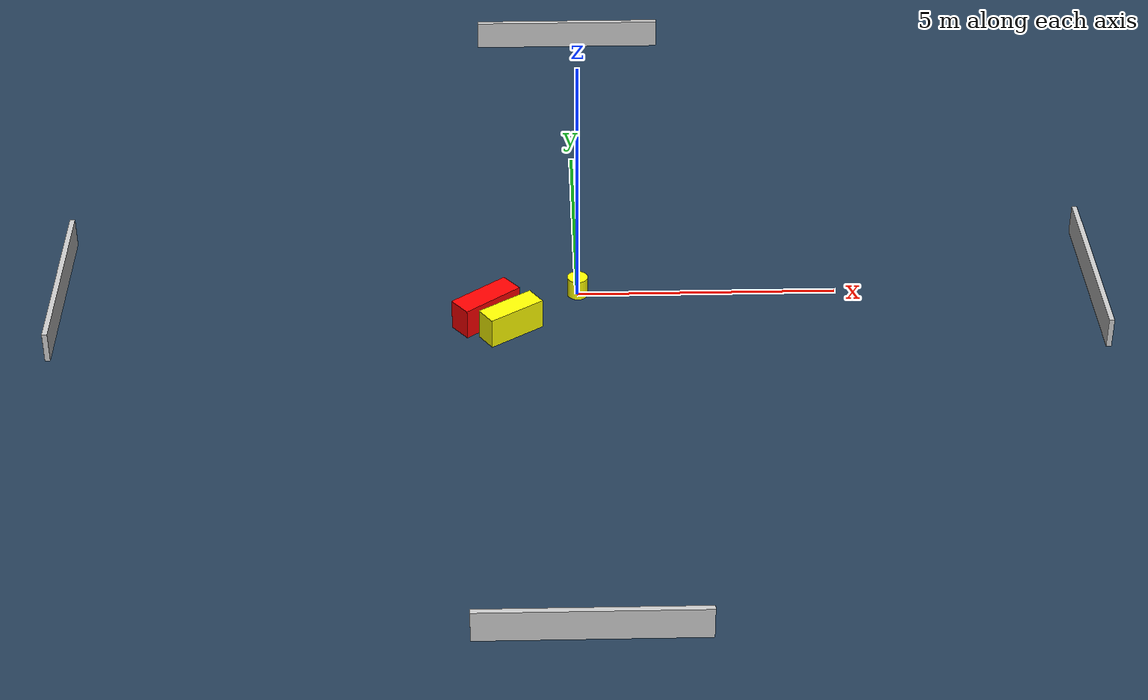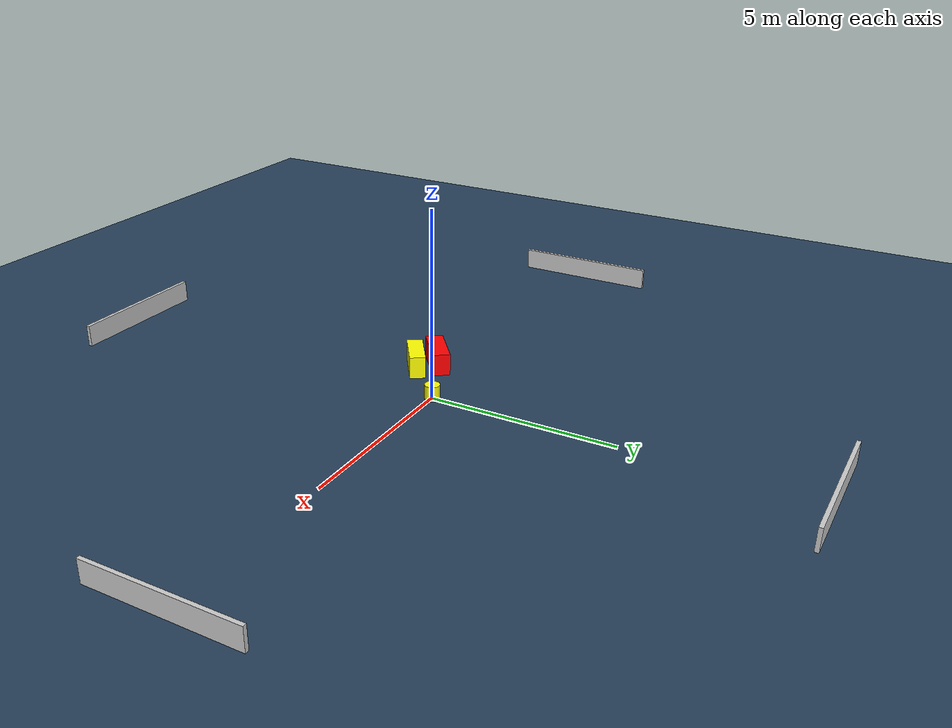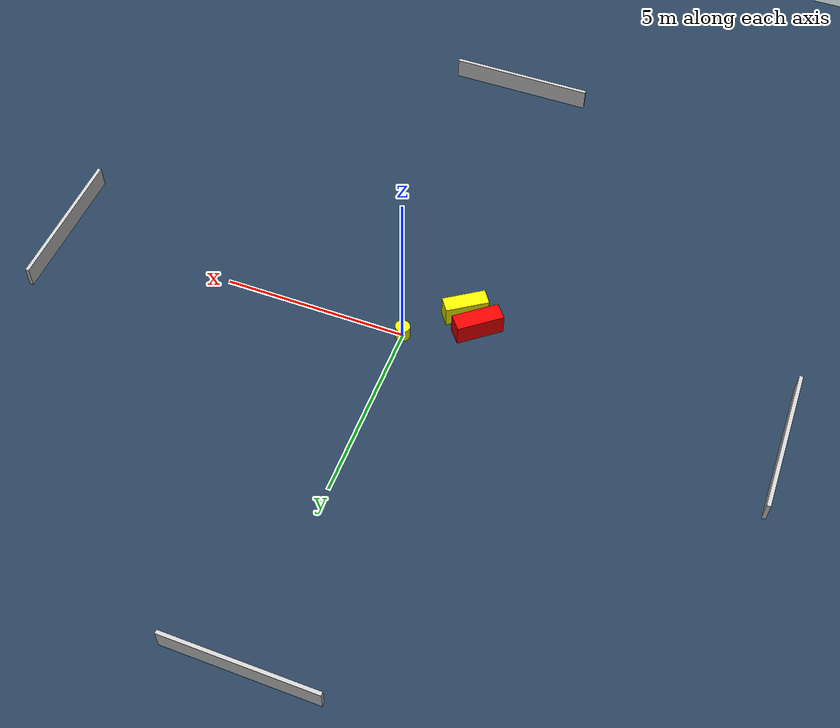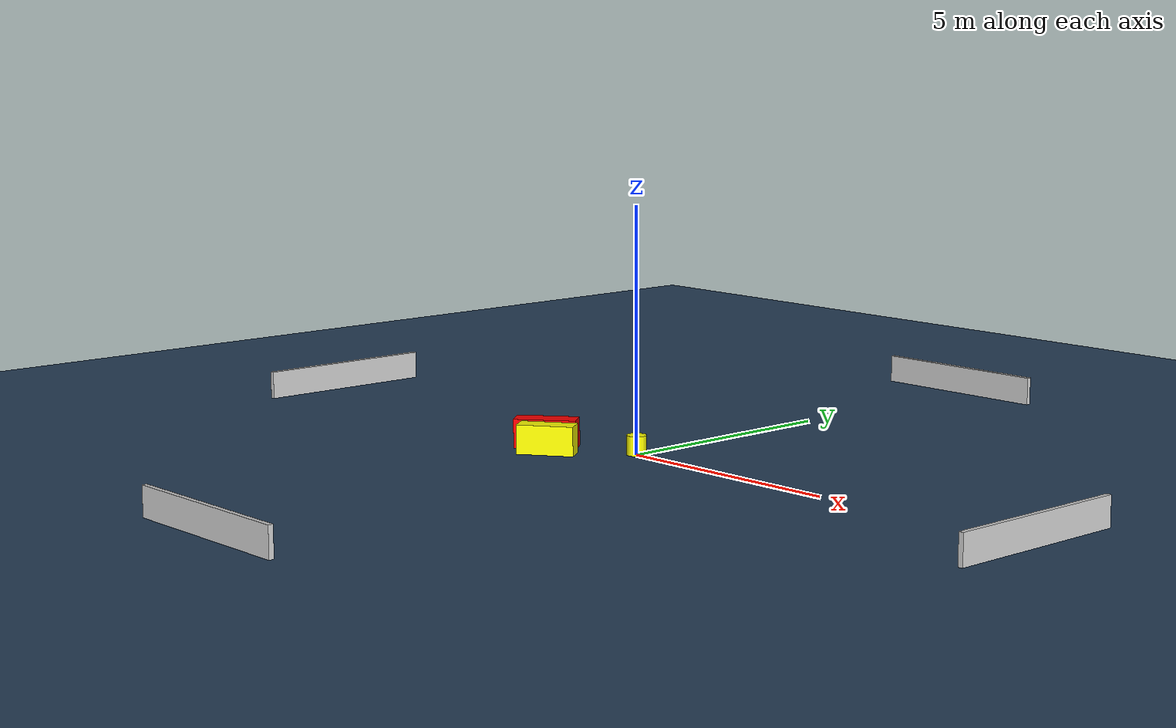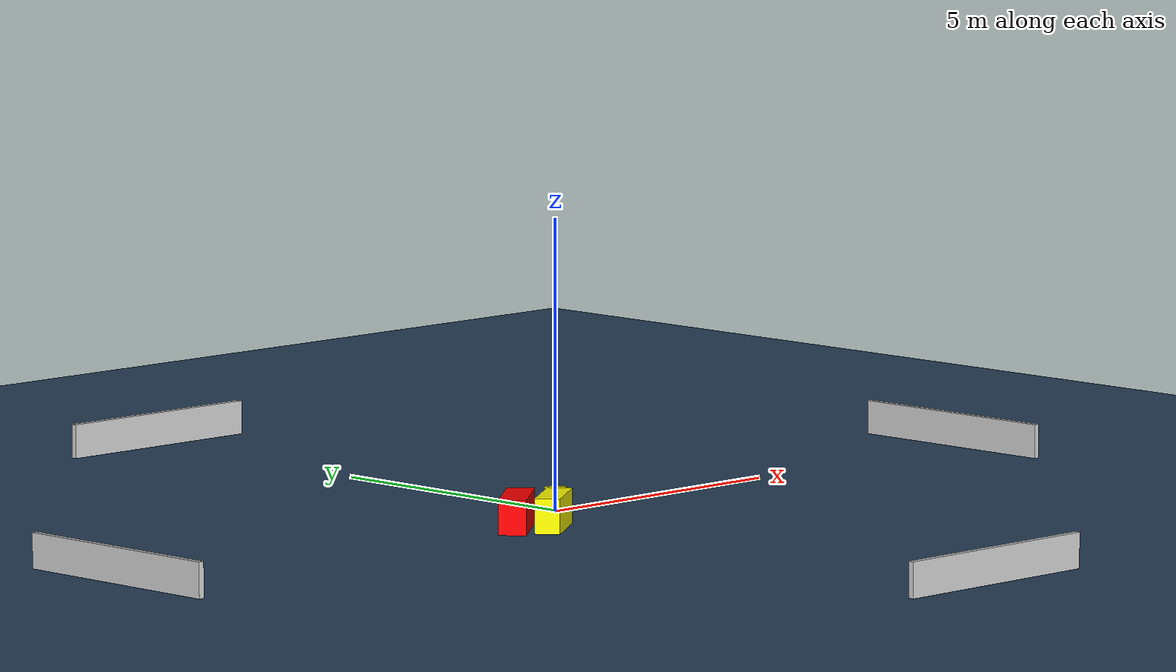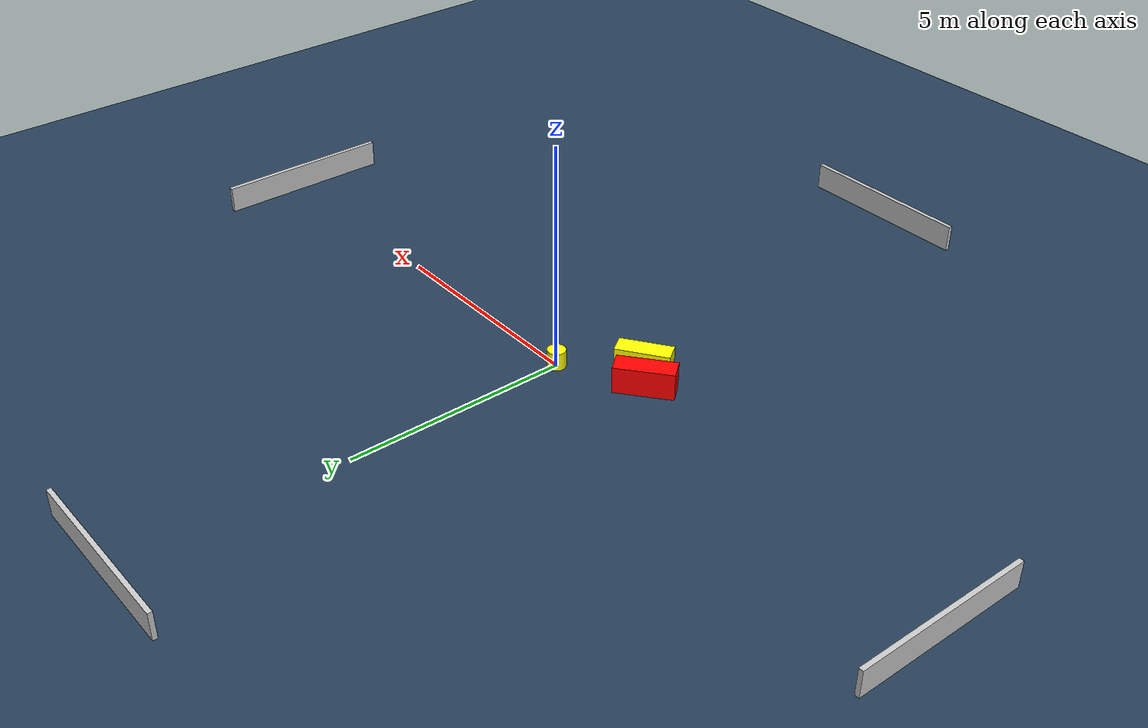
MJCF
<?xml version="1.0" ?>
<mujoco model="generated_environment">
  <option timestep="0.01" integrator="RK4" cone="elliptic"/>
  <default>
    <geom density="1"/>
  </default>
  <asset>
    <texture builtin="gradient" height="3072" name="skybox" rgb1="0.3 0.5 0.7" rgb2="0 0 0" type="skybox" width="512"/>
    <texture builtin="checker" height="300" name="groundplane" rgb1="0.2 0.3 0.4" rgb2="0.1 0.2 0.3" type="2d" width="300"/>
    <material name="groundplane" reflectance="0.2" texrepeat="5 5" texture="groundplane"/>
  </asset>
  <worldbody>
    <light dir="0 0 -1" directional="true" pos="0 0 1.5"/>
    <geom condim="3" friction="0.5 0.005 0.001" material="groundplane" name="floor" pos="0 0 0" size="0 0 0.05" type="plane"/>
    <body name="walls">
      <geom name="wall_1" condim="4" pos="-10.0 0.0 0.3" rgba="0.800000011920929 0.800000011920929 0.800000011920929 1.0" size="0.05 2.0 0.3" type="box"/>
      <geom name="wall_2" condim="4" pos="10.0 0.0 0.3" rgba="0.800000011920929 0.800000011920929 0.800000011920929 1.0" size="0.05 2.0 0.3" type="box"/>
      <geom name="wall_3" condim="4" pos="0.0 -10.0 0.3" rgba="0.800000011920929 0.800000011920929 0.800000011920929 1.0" size="2.0 0.05 0.3" type="box"/>
      <geom name="wall_4" condim="4" pos="0.0 10.0 0.3" rgba="0.800000011920929 0.800000011920929 0.800000011920929 1.0" size="2.0 0.05 0.3" type="box"/>
    </body>
    <body name="robot">
      <joint name="joint_x" type="slide" pos="0 0 0" axis="1 0 0"/>
      <joint name="joint_y" type="slide" pos="0 0 0" axis="0 1 0"/>
      <geom name="robot" type="cylinder" pos="0.0 0.0 0.2" size="0.2 0.2 0.0" mass="5.0" friction="1.0 0.005 0.0001" condim="4" rgba="1.0 1.0 0.0 1.0"/>
    </body>
    <body name="obstacle_1_movable">
      <geom name="obstacle_1_movable" condim="4" pos="-1.2961862757502671 -1.2449548375383042 0.3" euler="0 0 124.64127476734728" friction="0.0 0.005 0.001" rgba="1.0 1.0 0.0 1.0" size="0.21414762591936043 0.5859453288276356 0.3" type="box" mass="0.1"/>
      <joint type="free"/>
    </body>
    <body name="obstacle_2_static">
      <geom name="obstacle_2_static" condim="4" pos="-1.775620767615044 -0.8514579546650396 0.3" euler="0 0 38.801843739701624" friction="0.0 0.005 0.001" rgba="1.0 0.0 0.0 1.0" size="0.6401769377628361 0.23588841976468466 0.3" type="box"/>
    </body>
  </worldbody>
  <actuator>
    <motor name="actuator_x" joint="joint_x" gear="1" ctrlrange="-1 1"/>
    <motor name="actuator_y" joint="joint_y" gear="1" ctrlrange="-1 1"/>
  </actuator>
</mujoco>
